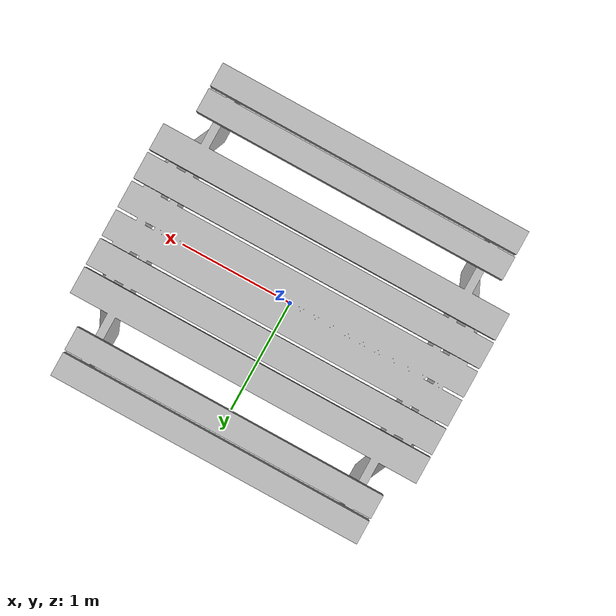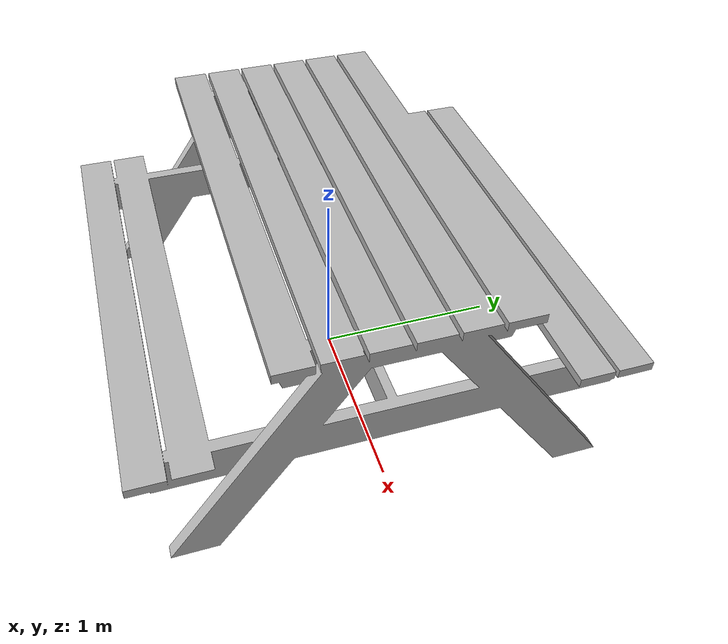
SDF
<?xml version="1.0"?>
<sdf version="1.9">
  <model name="picnic_table">
    <static>true</static>
    <link name="link">
      <visual name="visual">
        <!-- Source OBJ is Y-up; rotate it into Gazebo's Z-up frame. -->
        <pose>0 0 0 1.57079632679 0 0</pose>
        <geometry>
          <mesh>
            <uri>model://cmra_models/picnic_table/picnic_table.obj</uri>
            <scale>0.15 0.15 0.15</scale>
          </mesh>
        </geometry>
      </visual>
    </link>
  </model>
</sdf>
